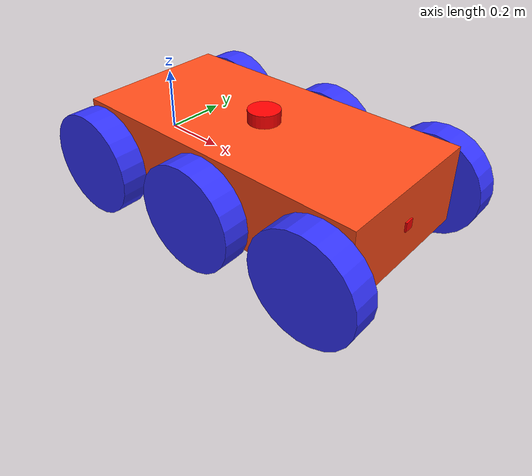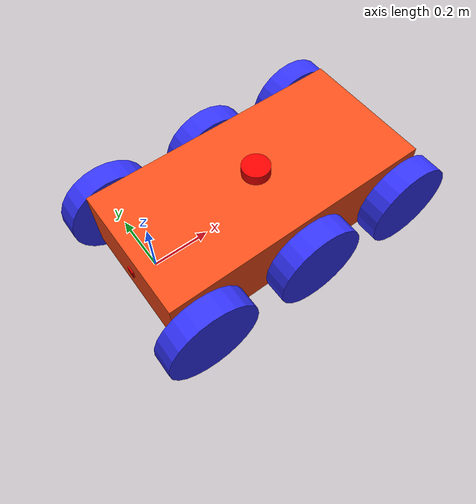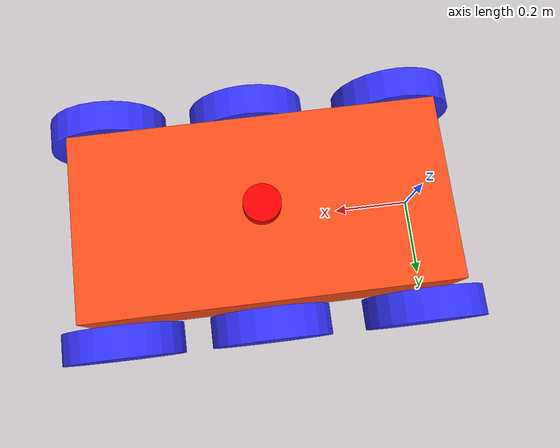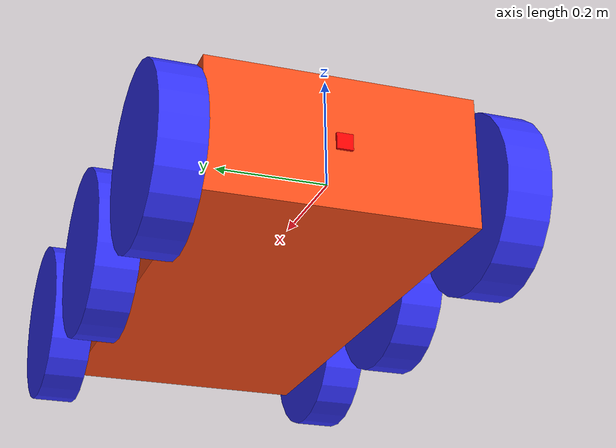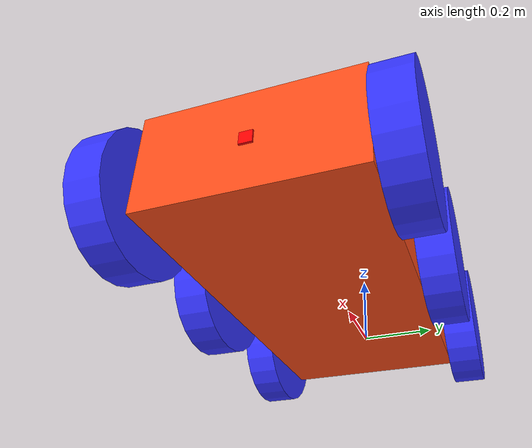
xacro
<?xml version="1.0"?>
<robot xmlns:xacro="http://www.ros.org/wiki/xacro"  name="robot">

    <xacro:include filename="robot_core.xacro" />
    <xacro:include filename="gazebo_control.xacro" />
    <xacro:include filename="lidar_sim.xacro" />
    <xacro:include filename="camera_front.xacro" />
    <xacro:include filename="camera_rear.xacro" />

</robot>

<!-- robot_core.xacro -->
<robot xmlns:xacro="http://www.ros.org/wiki/xacro" >

    <xacro:include filename="inertial_macros.xacro"/>

    <xacro:property name="chassis_length" value="0.99"/>
    <xacro:property name="chassis_width" value="0.495"/>
    <xacro:property name="chassis_height" value="0.2475"/>
    <xacro:property name="chassis_mass" value="1.0"/>
    <xacro:property name="wheel_radius" value="0.165"/>
    <xacro:property name="wheel_thickness" value="0.0825"/>
    <xacro:property name="wheel_mass" value="0.05"/>

    <xacro:property name="wheel_offset_x" value="0.0825"/>
    <xacro:property name="wheel_offset_y" value="0.3"/>
    <xacro:property name="wheel_offset_z" value="0.0825"/>

    <xacro:property name="wheelcenter_offset_x" value="0.4225"/>
    <xacro:property name="wheelcenter_offset_y" value="0.3"/>
    <xacro:property name="wheelcenter_offset_z" value="0.0"/>

    <xacro:property name="wheelfront_offset_x" value="0.825"/>
    <xacro:property name="wheelfront_offset_y" value="0.3"/>
    <xacro:property name="wheelfront_offset_z" value="0.0"/>

    <material name="white">
        <color rgba="1 1 1 1" />
    </material>

    <material name="orange">
        <color rgba="1 0.3 0.1 1"/>
    </material>

    <material name="blue">
        <color rgba="0.2 0.2 1 1"/>
    </material>

    <material name="black">
        <color rgba="0 0 0 1"/>
    </material>

    <material name="red">
        <color rgba="1 0 0 1"/>
    </material>

    <!-- BASE LINK -->

    <link name="base_link">

    </link>

    <!-- BASE_FOOTPRINT LINK -->

    <joint name="base_footprint_joint" type="fixed">
        <parent link="base_link"/>
        <child link="base_footprint"/>
        <origin xyz="0 0 0" rpy="0 0 0"/>
    </joint>

    <link name="base_footprint">
    </link>

    <!-- CHASSIS LINK -->

    <joint name="chassis_joint" type="fixed">
        <parent link="base_link"/>
        <child link="chassis"/>
        <origin xyz="${-wheel_offset_x} 0 ${-wheel_offset_z}"/>
    </joint>

    <link name="chassis">
        <visual>
            <origin xyz="${chassis_length/2} 0 ${chassis_height/2}"/>
            <geometry>
                <box size="${chassis_length} ${chassis_width} ${chassis_height}"/>
            </geometry>
            <material name="orange"/>
        </visual>
        <collision>
            <origin xyz="${chassis_length/2} 0 ${chassis_height/2}"/>
            <geometry>
                <box size="${chassis_length} ${chassis_width} ${chassis_height}"/>
            </geometry>
        </collision>
        <xacro:inertial_box mass="0.5" x="${chassis_length}" y="${chassis_width}" z="${chassis_height}">
            <origin xyz="${chassis_length/2} 0 ${chassis_height/2}" rpy="0 0 0"/>
        </xacro:inertial_box>
    </link>

    <gazebo reference="chassis">
        <material>Gazebo/Orange</material>
    </gazebo>

    <!-- LEFT WHEEL LINK -->

    <joint name="left_wheel_joint" type="continuous">
        <parent link="base_link"/>
        <child link="left_wheel"/>
        <origin xyz="0 ${wheel_offset_y} 0" rpy="-${pi/2} 0 0" />
        <axis xyz="0 0 1"/>
    </joint>

    <link name="left_wheel">
        <visual>
            <geometry>
                <cylinder radius="${wheel_radius}" length="${wheel_thickness}"/>
            </geometry>
            <material name="blue"/>
        </visual>
        <collision>
            <geometry>
                <sphere radius="${wheel_radius}"/>
            </geometry>
        </collision>
        <xacro:inertial_cylinder mass="${wheel_mass}" length="${wheel_thickness}" radius="${wheel_radius}">
            <origin xyz="0 0 0" rpy="0 0 0"/>
        </xacro:inertial_cylinder>
    </link>

    <gazebo reference="left_wheel">
        <material>Gazebo/Blue</material>
    </gazebo>

    <!-- RIGHT WHEEL LINK -->

    <joint name="right_wheel_joint" type="continuous">
        <parent link="base_link"/>
        <child link="right_wheel"/>
        <origin xyz="0 ${-wheel_offset_y} 0" rpy="${pi/2} 0 0" />
        <axis xyz="0 0 -1"/>
    </joint>

    <link name="right_wheel">
        <visual>
            <geometry>
                <cylinder radius="${wheel_radius}" length="${wheel_thickness}"/>
            </geometry>
            <material name="blue"/>
        </visual>
        <collision>
            <geometry>
                <sphere radius="${wheel_radius}"/>
            </geometry>
        </collision>
        <xacro:inertial_cylinder mass="${wheel_mass}" length="${wheel_thickness}" radius="${wheel_radius}">
            <origin xyz="0 0 0" rpy="0 0 0"/>
        </xacro:inertial_cylinder>
    </link>

    <gazebo reference="right_wheel">
        <material>Gazebo/Blue</material>
    </gazebo>

    <!-- LEFT CENTER WHEEL LINK -->

    <joint name="left_center_wheel_joint" type="fixed">
        <parent link="base_link"/>
        <child link="left_center_wheel"/>
        <origin xyz="${wheelcenter_offset_x} ${wheelcenter_offset_y} ${wheelcenter_offset_z}" rpy="-${pi/2} 0 0" />
        <axis xyz="0 0 1"/>
    </joint>

    <link name="left_center_wheel">
        <visual>
            <geometry>
                <cylinder radius="${wheel_radius}" length="${wheel_thickness}"/>
            </geometry>
            <material name="blue"/>
        </visual>
        <collision>
            <geometry>
                <sphere radius="${wheel_radius}"/>
            </geometry>
        </collision>
        <xacro:inertial_cylinder mass="${wheel_mass}" length="${wheel_thickness}" radius="${wheel_radius}">
            <origin xyz="0 0 0" rpy="0 0 0"/>
        </xacro:inertial_cylinder>
    </link>

    <gazebo reference="left_center_wheel">
        <mu1 value="0.001"/>
        <mu2 value="0.001"/>
        <material>Gazebo/Blue</material>
    </gazebo>

    <!-- RIGHT CENTER WHEEL LINK -->

    <joint name="right_center_wheel_joint" type="fixed">
        <parent link="base_link"/>
        <child link="right_center_wheel"/>
        <origin xyz="${wheelcenter_offset_x} ${-wheelcenter_offset_y} ${wheelcenter_offset_z}" rpy="${pi/2} 0 0" />
        <axis xyz="0 0 -1"/>
    </joint>

    <link name="right_center_wheel">
        <visual>
            <geometry>
                <cylinder radius="${wheel_radius}" length="${wheel_thickness}"/>
            </geometry>
            <material name="blue"/>
        </visual>
        <collision>
            <geometry>
                <sphere radius="${wheel_radius}"/>
            </geometry>
        </collision>
        <xacro:inertial_cylinder mass="${wheel_mass}" length="${wheel_thickness}" radius="${wheel_radius}">
            <origin xyz="0 0 0" rpy="0 0 0"/>
        </xacro:inertial_cylinder>
    </link>

    <gazebo reference="right_center_wheel">
        <material>Gazebo/Blue</material>
        <mu1 value="0.001"/>
        <mu2 value="0.001"/>
    </gazebo>

    <!-- LEFT FRONT WHEEL LINK -->

    <joint name="left_front_wheel_joint" type="fixed">
        <parent link="base_link"/>
        <child link="left_front_wheel"/>
        <origin xyz="${wheelfront_offset_x} ${wheelfront_offset_y} ${wheelfront_offset_z}" rpy="-${pi/2} 0 0" />
        <axis xyz="0 0 1"/>
    </joint>

    <link name="left_front_wheel">
        <visual>
            <geometry>
                <cylinder radius="${wheel_radius}" length="${wheel_thickness}"/>
            </geometry>
            <material name="blue"/>
        </visual>
        <collision>
            <geometry>
                <sphere radius="${wheel_radius}"/>
            </geometry>
        </collision>
        <xacro:inertial_cylinder mass="${wheel_mass}" length="${wheel_thickness}" radius="${wheel_radius}">
            <origin xyz="0 0 0" rpy="0 0 0"/>
        </xacro:inertial_cylinder>
    </link>

    <gazebo reference="left_front_wheel">
        <material>Gazebo/Blue</material>
        <mu1 value="0.001"/>
        <mu2 value="0.001"/>
    </gazebo>

    <!-- RIGHT FRONT WHEEL LINK -->

    <joint name="right_front_wheel_joint" type="fixed">
        <parent link="base_link"/>
        <child link="right_front_wheel"/>
        <origin xyz="${wheelfront_offset_x} ${-wheelfront_offset_y} ${wheelfront_offset_z}" rpy="${pi/2} 0 0" />
        <axis xyz="0 0 -1"/>
    </joint>

    <link name="right_front_wheel">
        <visual>
            <geometry>
                <cylinder radius="${wheel_radius}" length="${wheel_thickness}"/>
            </geometry>
            <material name="blue"/>
        </visual>
        <collision>
            <geometry>
                <sphere radius="${wheel_radius}"/>
            </geometry>
        </collision>
        <xacro:inertial_cylinder mass="${wheel_mass}" length="${wheel_thickness}" radius="${wheel_radius}">
            <origin xyz="0 0 0" rpy="0 0 0"/>
        </xacro:inertial_cylinder>
    </link>

    <gazebo reference="right_front_wheel">
        <material>Gazebo/Blue</material>
        <mu1 value="0.001"/>
        <mu2 value="0.001"/>
    </gazebo>

</robot>

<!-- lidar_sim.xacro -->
<robot xmlns:xacro="http://www.ros.org/wiki/xacro" >

    <joint name="laser_joint" type="fixed">
        <parent link="chassis"/>
        <child link="laser_frame"/>
        <origin xyz="0.495 0 0.2675" rpy="0 0 0"/>
    </joint>

    <link name="laser_frame">
        <visual>
            <geometry>
                <cylinder radius="0.05" length="0.04"/>
            </geometry>
            <material name="red"/>
        </visual>
        <collision>
            <geometry>
                <cylinder radius="0.05" length="0.04"/>
            </geometry>
        </collision>
        <xacro:inertial_cylinder mass="0.1" length="0.04" radius="0.05">
            <origin xyz="0 0 0" rpy="0 0 0"/>
        </xacro:inertial_cylinder>
    </link>

    <gazebo reference="laser_frame">
        <material>Gazebo/Red</material>

        <sensor name="laser" type="ray">
            <pose> 0 0 0 0 0 0 </pose>
            <visualize>true</visualize>
            <update_rate>10</update_rate>
            <ray>
                <scan>
                    <horizontal>
                        <samples>360</samples>
                        <min_angle>-3.14</min_angle>
                        <max_angle>3.14</max_angle>
                    </horizontal>
                </scan>
                <range>
                    <min>0.3</min>
                    <max>12</max>
                </range>
            </ray>
            <plugin name="laser_controller" filename="libgazebo_ros_ray_sensor.so">
                <ros>
                    <argument>~/out:=scan</argument>
                </ros>
                <output_type>sensor_msgs/LaserScan</output_type>
                <frame_name>laser_frame</frame_name>
            </plugin>
        </sensor>
    </gazebo>

</robot>

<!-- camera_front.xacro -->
<robot xmlns:xacro="http://www.ros.org/wiki/xacro" >

    <joint name="camera_joint_front" type="fixed">
        <parent link="chassis"/>
        <child link="camera_link_front"/>
        <origin xyz="0.99 0 0.12375" rpy="0 0 0"/>
    </joint>

    <link name="camera_link_front">
        <visual>
            <geometry>
                <box size="0.010 0.03 0.03"/>
            </geometry>
            <material name="red"/>
        </visual>
    </link>

    <joint name="camera_optical_joint_front" type="fixed">
        <parent link="camera_link_front"/>
        <child link="camera_link_optical_front"/>
        <origin xyz="0 0 0" rpy="${-pi/2} 0 ${-pi/2}"/>
    </joint>

    <link name="camera_link_optical_front"></link>

    <gazebo reference="camera_link_front">
        <material>Gazebo/Red</material>

        <sensor name="camera_front" type="camera">
            <pose> 0 0 0 0 0 0 </pose>
            <visualize>true</visualize>
            <update_rate>10</update_rate>
            <camera>
                <horizontal_fov>1.089</horizontal_fov>
                <image>
                    <format>R8G8B8</format>
                    <width>640</width>
                    <height>480</height>
                </image>
                <clip>
                    <near>0.05</near>
                    <far>8.0</far>
                </clip>
            </camera>
            <plugin name="camera_controller_front" filename="libgazebo_ros_camera.so">
                <frame_name>camera_link_optical_front</frame_name>
            </plugin>
        </sensor>
    </gazebo>

</robot>

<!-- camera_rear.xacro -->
<robot xmlns:xacro="http://www.ros.org/wiki/xacro" >

    <joint name="camera_joint_rear" type="fixed">
        <parent link="chassis"/>
        <child link="camera_link_rear"/>
        <origin xyz="0 0 0.12375" rpy="0 0 ${-pi}"/>
    </joint>

    <link name="camera_link_rear">
        <visual>
            <geometry>
                <box size="0.010 0.03 0.03"/>
            </geometry>
            <material name="red"/>
        </visual>
    </link>

    <joint name="camera_optical_joint_rear" type="fixed">
        <parent link="camera_link_rear"/>
        <child link="camera_link_optical_rear"/>
        <origin xyz="0 0 0" rpy="${-pi/2} 0 ${-pi/2}"/>
    </joint>

    <link name="camera_link_optical_rear"></link>

    <gazebo reference="camera_link_rear">
        <material>Gazebo/Red</material>

        <sensor name="camera_rear" type="camera">
            <pose> 0 0 0 0 0 0 </pose>
            <visualize>true</visualize>
            <update_rate>10</update_rate>
            <camera>
                <horizontal_fov>1.089</horizontal_fov>
                <image>
                    <format>R8G8B8</format>
                    <width>640</width>
                    <height>480</height>
                </image>
                <clip>
                    <near>0.05</near>
                    <far>8.0</far>
                </clip>
            </camera>
            <plugin name="camera_controller_rear" filename="libgazebo_ros_camera.so">
                <frame_name>camera_link_optical_rear</frame_name>
            </plugin>
        </sensor>
    </gazebo>

</robot>
